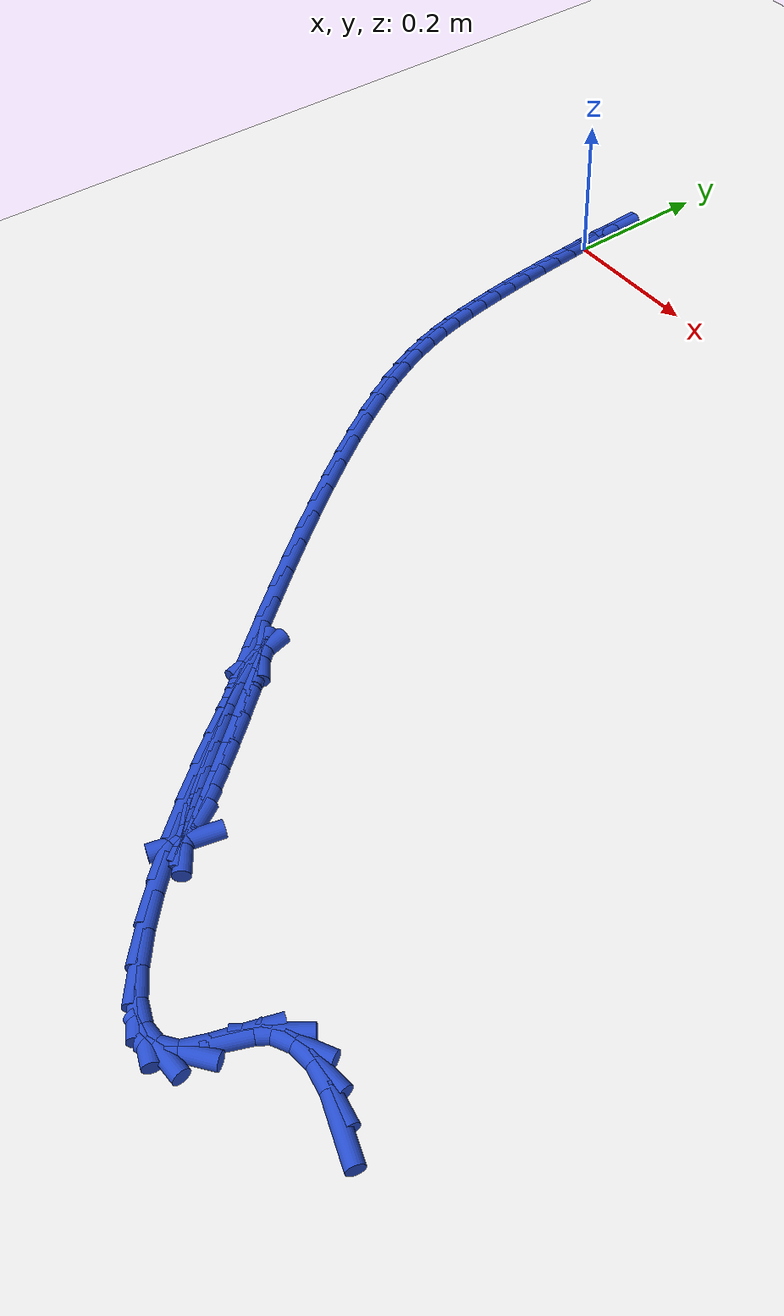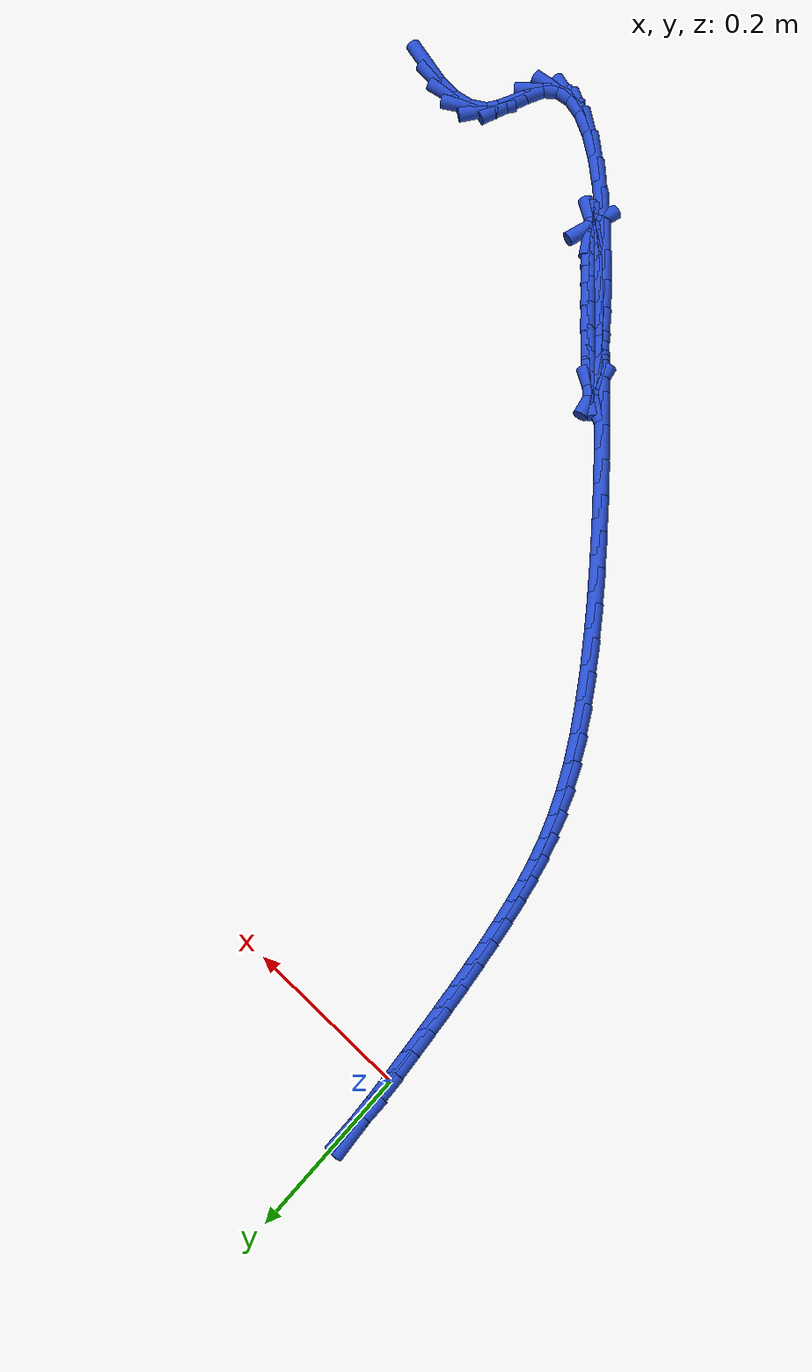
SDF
<sdf version="1.6">
 <world name="default">
  <model name="ground_plane">
   <static>1</static>
   <link name="link">
    <collision name="collision">
     <geometry><plane><normal>0 0 1</normal><size>100 100</size></plane></geometry>
     <surface><friction><ode><mu>100</mu><mu2>50</mu2></ode></friction></surface>
    </collision>
    <visual name="visual">
     <cast_shadows>0</cast_shadows>
     <geometry><plane><normal>0 0 1</normal><size>100 100</size></plane></geometry>
     <material>
      <script><uri>file://media/materials/scripts/gazebo.material</uri><name>Gazebo/WhiteGlow</name></script>
     </material>
    </visual>
   </link>
  </model>
  <model name="line">
   <link name="link_0">
    <pose>4.336808689942018e-18 -1.3877787807814457e-17 0.01 0 1.57 -1.5004727236645181</pose>
    <collision name="collision">
     <geometry><cylinder><radius>0.01</radius><length>0.08</length></cylinder></geometry>
    </collision>
    <visual name="visual">
     <material>
      <script><name>Gazebo/Blue</name><uri>file://media/materials/scripts/gazebo.material</uri></script>
     </material>
     <geometry><cylinder><radius>0.01</radius><length>0.08</length></cylinder></geometry>
    </visual>
   </link>
   <link name="link_1">
    <pose>-0.002090213842050008 0.02967377890762394 0.01 0 1.57 -1.5243912335666294</pose>
    <collision name="collision">
     <geometry><cylinder><radius>0.01</radius><length>0.08</length></cylinder></geometry>
    </collision>
    <visual name="visual">
     <material>
      <script><name>Gazebo/Blue</name><uri>file://media/materials/scripts/gazebo.material</uri></script>
     </material>
     <geometry><cylinder><radius>0.01</radius><length>0.08</length></cylinder></geometry>
    </visual>
   </link>
   <link name="link_2">
    <pose>-0.003456920320375669 0.059104283312430735 0.01 0 1.57 -1.5678988701776204</pose>
    <collision name="collision">
     <geometry><cylinder><radius>0.01</radius><length>0.08</length></cylinder></geometry>
    </collision>
    <visual name="visual">
     <material>
      <script><name>Gazebo/Blue</name><uri>file://media/materials/scripts/gazebo.material</uri></script>
     </material>
     <geometry><cylinder><radius>0.01</radius><length>0.08</length></cylinder></geometry>
    </visual>
   </link>
   <link name="link_223">
    <pose>0.88336242282214 -1.0167301693961937 0.01 0 1.57 -0.28909262031329624</pose>
    <collision name="collision">
     <geometry><cylinder><radius>0.01</radius><length>0.08</length></cylinder></geometry>
    </collision>
    <visual name="visual">
     <material>
      <script><name>Gazebo/Blue</name><uri>file://media/materials/scripts/gazebo.material</uri></script>
     </material>
     <geometry><cylinder><radius>0.01</radius><length>0.08</length></cylinder></geometry>
    </visual>
   </link>
   <link name="link_224">
    <pose>0.8502763146235434 -1.006889537907581 0.01 0 1.57 -0.12430135158910828</pose>
    <collision name="collision">
     <geometry><cylinder><radius>0.01</radius><length>0.08</length></cylinder></geometry>
    </collision>
    <visual name="visual">
     <material>
      <script><name>Gazebo/Blue</name><uri>file://media/materials/scripts/gazebo.material</uri></script>
     </material>
     <geometry><cylinder><radius>0.01</radius><length>0.08</length></cylinder></geometry>
    </visual>
   </link>
   <link name="link_225">
    <pose>0.820319551987146 -1.003146574645335 0.01 0 1.57 0.13447065313208886</pose>
    <collision name="collision">
     <geometry><cylinder><radius>0.01</radius><length>0.08</length></cylinder></geometry>
    </collision>
    <visual name="visual">
     <material>
      <script><name>Gazebo/Blue</name><uri>file://media/materials/scripts/gazebo.material</uri></script>
     </material>
     <geometry><cylinder><radius>0.01</radius><length>0.08</length></cylinder></geometry>
    </visual>
   </link>
   <link name="link_226">
    <pose>0.7943796750687295 -1.0066559046987276 0.01 0 1.57 0.5154108014670346</pose>
    <collision name="collision">
     <geometry><cylinder><radius>0.01</radius><length>0.08</length></cylinder></geometry>
    </collision>
    <visual name="visual">
     <material>
      <script><name>Gazebo/Blue</name><uri>file://media/materials/scripts/gazebo.material</uri></script>
     </material>
     <geometry><cylinder><radius>0.01</radius><length>0.08</length></cylinder></geometry>
    </visual>
   </link>
   <link name="link_227">
    <pose>0.7733442240240753 -1.018572153157031 0.01 0 1.57 0.9534509294882209</pose>
    <collision name="collision">
     <geometry><cylinder><radius>0.01</radius><length>0.08</length></cylinder></geometry>
    </collision>
    <visual name="visual">
     <material>
      <script><name>Gazebo/Blue</name><uri>file://media/materials/scripts/gazebo.material</uri></script>
     </material>
     <geometry><cylinder><radius>0.01</radius><length>0.08</length></cylinder></geometry>
    </visual>
   </link>
   <link name="link_228">
    <pose>0.7580990790209606 -1.0400469403450905 0.01 0 1.57 1.2297935694770326</pose>
    <collision name="collision">
     <geometry><cylinder><radius>0.01</radius><length>0.08</length></cylinder></geometry>
    </collision>
    <visual name="visual">
     <material>
      <script><name>Gazebo/Blue</name><uri>file://media/materials/scripts/gazebo.material</uri></script>
     </material>
     <geometry><cylinder><radius>0.01</radius><length>0.08</length></cylinder></geometry>
    </visual>
   </link>
   <link name="link_229">
    <pose>0.7477933558911967 -1.06908814839122 0.01 0 1.57 1.1565052617797604</pose>
    <collision name="collision">
     <geometry><cylinder><radius>0.01</radius><length>0.08</length></cylinder></geometry>
    </collision>
    <visual name="visual">
     <material>
      <script><name>Gazebo/Blue</name><uri>file://media/materials/scripts/gazebo.material</uri></script>
     </material>
     <geometry><cylinder><radius>0.01</radius><length>0.08</length></cylinder></geometry>
    </visual>
   </link>
   <link name="link_230">
    <pose>0.73656225318452 -1.0946283324500012 0.01 0 1.57 0.6767507473455415</pose>
    <collision name="collision">
     <geometry><cylinder><radius>0.01</radius><length>0.08</length></cylinder></geometry>
    </collision>
    <visual name="visual">
     <material>
      <script><name>Gazebo/Blue</name><uri>file://media/materials/scripts/gazebo.material</uri></script>
     </material>
     <geometry><cylinder><radius>0.01</radius><length>0.08</length></cylinder></geometry>
    </visual>
   </link>
   <link name="link_231">
    <pose>0.7198495119521386 -1.1080537007623268 0.01 0 1.57 0.07758808867870097</pose>
    <collision name="collision">
     <geometry><cylinder><radius>0.01</radius><length>0.08</length></cylinder></geometry>
    </collision>
    <visual name="visual">
     <material>
      <script><name>Gazebo/Blue</name><uri>file://media/materials/scripts/gazebo.material</uri></script>
     </material>
     <geometry><cylinder><radius>0.01</radius><length>0.08</length></cylinder></geometry>
    </visual>
   </link>
   <link name="link_232">
    <pose>0.6979698356938636 -1.1097547177186098 0.01 0 1.57 -0.3127020809621105</pose>
    <collision name="collision">
     <geometry><cylinder><radius>0.01</radius><length>0.08</length></cylinder></geometry>
    </collision>
    <visual name="visual">
     <material>
      <script><name>Gazebo/Blue</name><uri>file://media/materials/scripts/gazebo.material</uri></script>
     </material>
     <geometry><cylinder><radius>0.01</radius><length>0.08</length></cylinder></geometry>
    </visual>
   </link>
   <link name="link_233">
    <pose>0.6718871283839941 -1.101321932379666 0.01 0 1.57 -0.5248018946952373</pose>
    <collision name="collision">
     <geometry><cylinder><radius>0.01</radius><length>0.08</length></cylinder></geometry>
    </collision>
    <visual name="visual">
     <material>
      <script><name>Gazebo/Blue</name><uri>file://media/materials/scripts/gazebo.material</uri></script>
     </material>
     <geometry><cylinder><radius>0.01</radius><length>0.08</length></cylinder></geometry>
    </visual>
   </link>
   <link name="link_234">
    <pose>0.6425652939968264 -1.0843458938063086 0.01 0 1.57 -0.6481626168121188</pose>
    <collision name="collision">
     <geometry><cylinder><radius>0.01</radius><length>0.08</length></cylinder></geometry>
    </collision>
    <visual name="visual">
     <material>
      <script><name>Gazebo/Blue</name><uri>file://media/materials/scripts/gazebo.material</uri></script>
     </material>
     <geometry><cylinder><radius>0.01</radius><length>0.08</length></cylinder></geometry>
    </visual>
   </link>
   <link name="link_235">
    <pose>0.6109682365066598 -1.0604171510593539 0.01 0 1.57 -0.7273041051173625</pose>
    <collision name="collision">
     <geometry><cylinder><radius>0.01</radius><length>0.08</length></cylinder></geometry>
    </collision>
    <visual name="visual">
     <material>
      <script><name>Gazebo/Blue</name><uri>file://media/materials/scripts/gazebo.material</uri></script>
     </material>
     <geometry><cylinder><radius>0.01</radius><length>0.08</length></cylinder></geometry>
    </visual>
   </link>
   <link name="link_236">
    <pose>0.5780598598877921 -1.031126253199615 0.01 0 1.57 -0.7824836235669334</pose>
    <collision name="collision">
     <geometry><cylinder><radius>0.01</radius><length>0.08</length></cylinder></geometry>
    </collision>
    <visual name="visual">
     <material>
      <script><name>Gazebo/Blue</name><uri>file://media/materials/scripts/gazebo.material</uri></script>
     </material>
     <geometry><cylinder><radius>0.01</radius><length>0.08</length></cylinder></geometry>
    </visual>
   </link>
   <link name="link_237">
    <pose>0.5448040681145216 -0.998063749287908 0.01 0 1.57 -0.8237433551442273</pose>
    <collision name="collision">
     <geometry><cylinder><radius>0.01</radius><length>0.08</length></cylinder></geometry>
    </collision>
    <visual name="visual">
     <material>
      <script><name>Gazebo/Blue</name><uri>file://media/materials/scripts/gazebo.material</uri></script>
     </material>
     <geometry><cylinder><radius>0.01</radius><length>0.08</length></cylinder></geometry>
    </visual>
   </link>
   <link name="link_238">
    <pose>0.512164765161147 -0.9628201883850479 0.01 0 1.57 -0.8566623278981587</pose>
    <collision name="collision">
     <geometry><cylinder><radius>0.01</radius><length>0.08</length></cylinder></geometry>
    </collision>
    <visual name="visual">
     <material>
      <script><name>Gazebo/Blue</name><uri>file://media/materials/scripts/gazebo.material</uri></script>
     </material>
     <geometry><cylinder><radius>0.01</radius><length>0.08</length></cylinder></geometry>
    </visual>
   </link>
   <link name="link_239">
    <pose>0.4811058550019657 -0.9269861195518487 0.01 0 1.57 -0.8848253395469181</pose>
    <collision name="collision">
     <geometry><cylinder><radius>0.01</radius><length>0.08</length></cylinder></geometry>
    </collision>
    <visual name="visual">
     <material>
      <script><name>Gazebo/Blue</name><uri>file://media/materials/scripts/gazebo.material</uri></script>
     </material>
     <geometry><cylinder><radius>0.01</radius><length>0.08</length></cylinder></geometry>
    </visual>
   </link>
   <link name="link_240">
    <pose>0.4525912416112764 -0.8921520918491259 0.01 0 1.57 -0.9111424497759483</pose>
    <collision name="collision">
     <geometry><cylinder><radius>0.01</radius><length>0.08</length></cylinder></geometry>
    </collision>
    <visual name="visual">
     <material>
      <script><name>Gazebo/Blue</name><uri>file://media/materials/scripts/gazebo.material</uri></script>
     </material>
     <geometry><cylinder><radius>0.01</radius><length>0.08</length></cylinder></geometry>
    </visual>
   </link>
   <link name="link_241">
    <pose>0.4275848289633773 -0.8599086543376939 0.01 0 1.57 -0.9390843646306791</pose>
    <collision name="collision">
     <geometry><cylinder><radius>0.01</radius><length>0.08</length></cylinder></geometry>
    </collision>
    <visual name="visual">
     <material>
      <script><name>Gazebo/Blue</name><uri>file://media/materials/scripts/gazebo.material</uri></script>
     </material>
     <geometry><cylinder><radius>0.01</radius><length>0.08</length></cylinder></geometry>
    </visual>
   </link>
   <link name="link_242">
    <pose>0.40705052103256645 -0.831846356078368 0.01 0 1.57 -0.975441539034719</pose>
    <collision name="collision">
     <geometry><cylinder><radius>0.01</radius><length>0.08</length></cylinder></geometry>
    </collision>
    <visual name="visual">
     <material>
      <script><name>Gazebo/Blue</name><uri>file://media/materials/scripts/gazebo.material</uri></script>
     </material>
     <geometry><cylinder><radius>0.01</radius><length>0.08</length></cylinder></geometry>
    </visual>
   </link>
   <link name="link_243">
    <pose>0.391952221793142 -0.8095557461319624 0.01 0 1.57 -1.0432133565956563</pose>
    <collision name="collision">
     <geometry><cylinder><radius>0.01</radius><length>0.08</length></cylinder></geometry>
    </collision>
    <visual name="visual">
     <material>
      <script><name>Gazebo/Blue</name><uri>file://media/materials/scripts/gazebo.material</uri></script>
     </material>
     <geometry><cylinder><radius>0.01</radius><length>0.08</length></cylinder></geometry>
    </visual>
   </link>
   <link name="link_244">
    <pose>0.38325383521940226 -0.7946273735592925 0.01 0 1.57 -1.3510652422803937</pose>
    <collision name="collision">
     <geometry><cylinder><radius>0.01</radius><length>0.08</length></cylinder></geometry>
    </collision>
    <visual name="visual">
     <material>
      <script><name>Gazebo/Blue</name><uri>file://media/materials/scripts/gazebo.material</uri></script>
     </material>
     <geometry><cylinder><radius>0.01</radius><length>0.08</length></cylinder></geometry>
    </visual>
   </link>
   <link name="link_245">
    <pose>0.38191926528564535 -0.7886517874211727 0.01 0 1.57 -0.5714839393085597</pose>
    <collision name="collision">
     <geometry><cylinder><radius>0.01</radius><length>0.08</length></cylinder></geometry>
    </collision>
    <visual name="visual">
     <material>
      <script><name>Gazebo/Blue</name><uri>file://media/materials/scripts/gazebo.material</uri></script>
     </material>
     <geometry><cylinder><radius>0.01</radius><length>0.08</length></cylinder></geometry>
    </visual>
   </link>
   <link name="link_246">
    <pose>0.3888118695991816 -0.7930841741446142 0.01 0 1.57 -0.7768329143984447</pose>
    <collision name="collision">
     <geometry><cylinder><radius>0.01</radius><length>0.08</length></cylinder></geometry>
    </collision>
    <visual name="visual">
     <material>
      <script><name>Gazebo/Blue</name><uri>file://media/materials/scripts/gazebo.material</uri></script>
     </material>
     <geometry><cylinder><radius>0.01</radius><length>0.08</length></cylinder></geometry>
    </visual>
   </link>
   <link name="link_247">
    <pose>0.40318762704443134 -0.8072157531832914 0.01 0 1.57 -0.8232310598219492</pose>
    <collision name="collision">
     <geometry><cylinder><radius>0.01</radius><length>0.08</length></cylinder></geometry>
    </collision>
    <visual name="visual">
     <material>
      <script><name>Gazebo/Blue</name><uri>file://media/materials/scripts/gazebo.material</uri></script>
     </material>
     <geometry><cylinder><radius>0.01</radius><length>0.08</length></cylinder></geometry>
    </visual>
   </link>
   <link name="link_248">
    <pose>0.4230103146601824 -0.8285980904313215 0.01 0 1.57 -0.8448954556311575</pose>
    <collision name="collision">
     <geometry><cylinder><radius>0.01</radius><length>0.08</length></cylinder></geometry>
    </collision>
    <visual name="visual">
     <material>
      <script><name>Gazebo/Blue</name><uri>file://media/materials/scripts/gazebo.material</uri></script>
     </material>
     <geometry><cylinder><radius>0.01</radius><length>0.08</length></cylinder></geometry>
    </visual>
   </link>
   <link name="link_249">
    <pose>0.44620714128686745 -0.8547335210866638 0.01 0 1.57 -0.8588666735849276</pose>
    <collision name="collision">
     <geometry><cylinder><radius>0.01</radius><length>0.08</length></cylinder></geometry>
    </collision>
    <visual name="visual">
     <material>
      <script><name>Gazebo/Blue</name><uri>file://media/materials/scripts/gazebo.material</uri></script>
     </material>
     <geometry><cylinder><radius>0.01</radius><length>0.08</length></cylinder></geometry>
    </visual>
   </link>
   <link name="link_250">
    <pose>0.47070531576491687 -0.8831243803472759 0.01 0 1.57 -0.8704333138733406</pose>
    <collision name="collision">
     <geometry><cylinder><radius>0.01</radius><length>0.08</length></cylinder></geometry>
    </collision>
    <visual name="visual">
     <material>
      <script><name>Gazebo/Blue</name><uri>file://media/materials/scripts/gazebo.material</uri></script>
     </material>
     <geometry><cylinder><radius>0.01</radius><length>0.08</length></cylinder></geometry>
    </visual>
   </link>
   <link name="link_251">
    <pose>0.4944320469347616 -0.9112730034111161 0.01 0 1.57 -0.8828655345072315</pose>
    <collision name="collision">
     <geometry><cylinder><radius>0.01</radius><length>0.08</length></cylinder></geometry>
    </collision>
    <visual name="visual">
     <material>
      <script><name>Gazebo/Blue</name><uri>file://media/materials/scripts/gazebo.material</uri></script>
     </material>
     <geometry><cylinder><radius>0.01</radius><length>0.08</length></cylinder></geometry>
    </visual>
   </link>
   <link name="link_252">
    <pose>0.5153145436368328 -0.9366817254761418 0.01 0 1.57 -0.901183103963383</pose>
    <collision name="collision">
     <geometry><cylinder><radius>0.01</radius><length>0.08</length></cylinder></geometry>
    </collision>
    <visual name="visual">
     <material>
      <script><name>Gazebo/Blue</name><uri>file://media/materials/scripts/gazebo.material</uri></script>
     </material>
     <geometry><cylinder><radius>0.01</radius><length>0.08</length></cylinder></geometry>
    </visual>
   </link>
   <link name="link_253">
    <pose>0.5313116142737828 -0.9568896196292366 0.01 0 1.57 -0.9367583040678491</pose>
    <collision name="collision">
     <geometry><cylinder><radius>0.01</radius><length>0.08</length></cylinder></geometry>
    </collision>
    <visual name="visual">
     <material>
      <script><name>Gazebo/Blue</name><uri>file://media/materials/scripts/gazebo.material</uri></script>
     </material>
     <geometry><cylinder><radius>0.01</radius><length>0.08</length></cylinder></geometry>
    </visual>
   </link>
   <link name="link_254">
    <pose>0.5414498150417512 -0.9706771305801681 0.01 0 1.57 -1.0293498994979644</pose>
    <collision name="collision">
     <geometry><cylinder><radius>0.01</radius><length>0.08</length></cylinder></geometry>
    </collision>
    <visual name="visual">
     <material>
      <script><name>Gazebo/Blue</name><uri>file://media/materials/scripts/gazebo.material</uri></script>
     </material>
     <geometry><cylinder><radius>0.01</radius><length>0.08</length></cylinder></geometry>
    </visual>
   </link>
   <link name="link_255">
    <pose>0.5460563454524446 -0.9783368407488324 0.01 0 1.57 1.306179661415784</pose>
    <collision name="collision">
     <geometry><cylinder><radius>0.01</radius><length>0.08</length></cylinder></geometry>
    </collision>
    <visual name="visual">
     <material>
      <script><name>Gazebo/Blue</name><uri>file://media/materials/scripts/gazebo.material</uri></script>
     </material>
     <geometry><cylinder><radius>0.01</radius><length>0.08</length></cylinder></geometry>
    </visual>
   </link>
   <link name="link_256">
    <pose>0.5455371528611433 -0.980252885390892 0.01 0 1.57 -0.5814781695562694</pose>
    <collision name="collision">
     <geometry><cylinder><radius>0.01</radius><length>0.08</length></cylinder></geometry>
    </collision>
    <visual name="visual">
     <material>
      <script><name>Gazebo/Blue</name><uri>file://media/materials/scripts/gazebo.material</uri></script>
     </material>
     <geometry><cylinder><radius>0.01</radius><length>0.08</length></cylinder></geometry>
    </visual>
   </link>
   <link name="link_257">
    <pose>0.5402981846231277 -0.9768093997620083 0.01 0 1.57 -0.7223870833226899</pose>
    <collision name="collision">
     <geometry><cylinder><radius>0.01</radius><length>0.08</length></cylinder></geometry>
    </collision>
    <visual name="visual">
     <material>
      <script><name>Gazebo/Blue</name><uri>file://media/materials/scripts/gazebo.material</uri></script>
     </material>
     <geometry><cylinder><radius>0.01</radius><length>0.08</length></cylinder></geometry>
    </visual>
   </link>
   <link name="link_258">
    <pose>0.5307453880936778 -0.9683905191178428 0.01 0 1.57 -0.7683796652550795</pose>
    <collision name="collision">
     <geometry><cylinder><radius>0.01</radius><length>0.08</length></cylinder></geometry>
    </collision>
    <visual name="visual">
     <material>
      <script><name>Gazebo/Blue</name><uri>file://media/materials/scripts/gazebo.material</uri></script>
     </material>
     <geometry><cylinder><radius>0.01</radius><length>0.08</length></cylinder></geometry>
    </visual>
   </link>
   <link name="link_259">
    <pose>0.5172847106280738 -0.9553803787140573 0.01 0 1.57 -0.7928484288678409</pose>
    <collision name="collision">
     <geometry><cylinder><radius>0.01</radius><length>0.08</length></cylinder></geometry>
    </collision>
    <visual name="visual">
     <material>
      <script><name>Gazebo/Blue</name><uri>file://media/materials/scripts/gazebo.material</uri></script>
     </material>
     <geometry><cylinder><radius>0.01</radius><length>0.08</length></cylinder></geometry>
    </visual>
   </link>
   <link name="link_260">
    <pose>0.500322099581596 -0.9381631138063137 0.01 0 1.57 -0.8092788859340966</pose>
    <collision name="collision">
     <geometry><cylinder><radius>0.01</radius><length>0.08</length></cylinder></geometry>
    </collision>
    <visual name="visual">
     <material>
      <script><name>Gazebo/Blue</name><uri>file://media/materials/scripts/gazebo.material</uri></script>
     </material>
     <geometry><cylinder><radius>0.01</radius><length>0.08</length></cylinder></geometry>
    </visual>
   </link>
   <link name="link_261">
    <pose>0.4802635023095245 -0.917122859650273 0.01 0 1.57 -0.8220227837935008</pose>
    <collision name="collision">
     <geometry><cylinder><radius>0.01</radius><length>0.08</length></cylinder></geometry>
    </collision>
    <visual name="visual">
     <material>
      <script><name>Gazebo/Blue</name><uri>file://media/materials/scripts/gazebo.material</uri></script>
     </material>
     <geometry><cylinder><radius>0.01</radius><length>0.08</length></cylinder></geometry>
    </visual>
   </link>
   <link name="link_262">
    <pose>0.4575148661671397 -0.8926437515015976 0.01 0 1.57 -0.8329419763639424</pose>
    <collision name="collision">
     <geometry><cylinder><radius>0.01</radius><length>0.08</length></cylinder></geometry>
    </collision>
    <visual name="visual">
     <material>
      <script><name>Gazebo/Blue</name><uri>file://media/materials/scripts/gazebo.material</uri></script>
     </material>
     <geometry><cylinder><radius>0.01</radius><length>0.08</length></cylinder></geometry>
    </visual>
   </link>
   <link name="link_263">
    <pose>0.43248213850972167 -0.8651099246159489 0.01 0 1.57 -0.842999125979453</pose>
    <collision name="collision">
     <geometry><cylinder><radius>0.01</radius><length>0.08</length></cylinder></geometry>
    </collision>
    <visual name="visual">
     <material>
      <script><name>Gazebo/Blue</name><uri>file://media/materials/scripts/gazebo.material</uri></script>
     </material>
     <geometry><cylinder><radius>0.01</radius><length>0.08</length></cylinder></geometry>
    </visual>
   </link>
   <link name="link_264">
    <pose>0.40557126669255056 -0.8349055142489885 0.01 0 1.57 -0.852776301729174</pose>
    <collision name="collision">
     <geometry><cylinder><radius>0.01</radius><length>0.08</length></cylinder></geometry>
    </collision>
    <visual name="visual">
     <material>
      <script><name>Gazebo/Blue</name><uri>file://media/materials/scripts/gazebo.material</uri></script>
     </material>
     <geometry><cylinder><radius>0.01</radius><length>0.08</length></cylinder></geometry>
    </visual>
   </link>
   <link name="link_265">
    <pose>0.3771881980709075 -0.8024146556563789 0.01 0 1.57 -0.8626822209850162</pose>
    <collision name="collision">
     <geometry><cylinder><radius>0.01</radius><length>0.08</length></cylinder></geometry>
    </collision>
    <visual name="visual">
     <material>
      <script><name>Gazebo/Blue</name><uri>file://media/materials/scripts/gazebo.material</uri></script>
     </material>
     <geometry><cylinder><radius>0.01</radius><length>0.08</length></cylinder></geometry>
    </visual>
   </link>
   <link name="link_266">
    <pose>0.3477388800000708 -0.7680214840937802 0.01 0 1.57 -0.873050065449156</pose>
    <collision name="collision">
     <geometry><cylinder><radius>0.01</radius><length>0.08</length></cylinder></geometry>
    </collision>
    <visual name="visual">
     <material>
      <script><name>Gazebo/Blue</name><uri>file://media/materials/scripts/gazebo.material</uri></script>
     </material>
     <geometry><cylinder><radius>0.01</radius><length>0.08</length></cylinder></geometry>
    </visual>
   </link>
   <link name="link_267">
    <pose>0.3176292598353217 -0.7321101348168547 0.01 0 1.57 -0.8841925210151731</pose>
    <collision name="collision">
     <geometry><cylinder><radius>0.01</radius><length>0.08</length></cylinder></geometry>
    </collision>
    <visual name="visual">
     <material>
      <script><name>Gazebo/Blue</name><uri>file://media/materials/scripts/gazebo.material</uri></script>
     </material>
     <geometry><cylinder><radius>0.01</radius><length>0.08</length></cylinder></geometry>
    </visual>
   </link>
   <link name="link_268">
    <pose>0.2872652849319403 -0.6950647430812641 0.01 0 1.57 -0.8964403887531653</pose>
    <collision name="collision">
     <geometry><cylinder><radius>0.01</radius><length>0.08</length></cylinder></geometry>
    </collision>
    <visual name="visual">
     <material>
      <script><name>Gazebo/Blue</name><uri>file://media/materials/scripts/gazebo.material</uri></script>
     </material>
     <geometry><cylinder><radius>0.01</radius><length>0.08</length></cylinder></geometry>
    </visual>
   </link>
   <link name="link_269">
    <pose>0.25705290264520686 -0.65726944414267 0.01 0 1.57 -0.9101776608823114</pose>
    <collision name="collision">
     <geometry><cylinder><radius>0.01</radius><length>0.08</length></cylinder></geometry>
    </collision>
    <visual name="visual">
     <material>
      <script><name>Gazebo/Blue</name><uri>file://media/materials/scripts/gazebo.material</uri></script>
     </material>
     <geometry><cylinder><radius>0.01</radius><length>0.08</length></cylinder></geometry>
    </visual>
   </link>
   <link name="link_270">
    <pose>0.2273980603304015 -0.6191083732567343 0.01 0 1.57 -0.925881833514367</pose>
    <collision name="collision">
     <geometry><cylinder><radius>0.01</radius><length>0.08</length></cylinder></geometry>
    </collision>
    <visual name="visual">
     <material>
      <script><name>Gazebo/Blue</name><uri>file://media/materials/scripts/gazebo.material</uri></script>
     </material>
     <geometry><cylinder><radius>0.01</radius><length>0.08</length></cylinder></geometry>
    </visual>
   </link>
   <link name="link_271">
    <pose>0.19870670534280452 -0.5809656656791186 0.01 0 1.57 -0.9441785287704486</pose>
    <collision name="collision">
     <geometry><cylinder><radius>0.01</radius><length>0.08</length></cylinder></geometry>
    </collision>
    <visual name="visual">
     <material>
      <script><name>Gazebo/Blue</name><uri>file://media/materials/scripts/gazebo.material</uri></script>
     </material>
     <geometry><cylinder><radius>0.01</radius><length>0.08</length></cylinder></geometry>
    </visual>
   </link>
   <link name="link_272">
    <pose>0.17138478503769594 -0.5432254566654843 0.01 0 1.57 -0.9659234482183334</pose>
    <collision name="collision">
     <geometry><cylinder><radius>0.01</radius><length>0.08</length></cylinder></geometry>
    </collision>
    <visual name="visual">
     <material>
      <script><name>Gazebo/Blue</name><uri>file://media/materials/scripts/gazebo.material</uri></script>
     </material>
     <geometry><cylinder><radius>0.01</radius><length>0.08</length></cylinder></geometry>
    </visual>
   </link>
   <link name="link_273">
    <pose>0.14583824677035617 -0.5062718814714933 0.01 0 1.57 -0.9923339109485668</pose>
    <collision name="collision">
     <geometry><cylinder><radius>0.01</radius><length>0.08</length></cylinder></geometry>
    </collision>
    <visual name="visual">
     <material>
      <script><name>Gazebo/Blue</name><uri>file://media/materials/scripts/gazebo.material</uri></script>
     </material>
     <geometry><cylinder><radius>0.01</radius><length>0.08</length></cylinder></geometry>
    </visual>
   </link>
   <link name="link_274">
    <pose>0.12247303789606528 -0.47048907535280715 0.01 0 1.57 -1.025211591294644</pose>
    <collision name="collision">
     <geometry><cylinder><radius>0.01</radius><length>0.08</length></cylinder></geometry>
    </collision>
    <visual name="visual">
     <material>
      <script><name>Gazebo/Blue</name><uri>file://media/materials/scripts/gazebo.material</uri></script>
     </material>
     <geometry><cylinder><radius>0.01</radius><length>0.08</length></cylinder></geometry>
    </visual>
   </link>
   <link name="link_275">
    <pose>0.1016951057701035 -0.43626117356508765 0.01 0 1.57 -1.0671696255452507</pose>
    <collision name="collision">
     <geometry><cylinder><radius>0.01</radius><length>0.08</length></cylinder></geometry>
    </collision>
    <visual name="visual">
     <material>
      <script><name>Gazebo/Blue</name><uri>file://media/materials/scripts/gazebo.material</uri></script>
     </material>
     <geometry><cylinder><radius>0.01</radius><length>0.08</length></cylinder></geometry>
    </visual>
   </link>
   <link name="link_276">
    <pose>0.0838939700927973 -0.40395543978115384 0.01 0 1.57 -1.117478321314873</pose>
    <collision name="collision">
     <geometry><cylinder><radius>0.01</radius><length>0.08</length></cylinder></geometry>
    </collision>
    <visual name="visual">
     <material>
      <script><name>Gazebo/Blue</name><uri>file://media/materials/scripts/gazebo.material</uri></script>
     </material>
     <geometry><cylinder><radius>0.01</radius><length>0.08</length></cylinder></geometry>
    </visual>
   </link>
   <link name="link_277">
    <pose>0.0690834339559128 -0.3735532679982973 0.01 0 1.57 -1.1719370149402037</pose>
    <collision name="collision">
     <geometry><cylinder><radius>0.01</radius><length>0.08</length></cylinder></geometry>
    </collision>
    <visual name="visual">
     <material>
      <script><name>Gazebo/Blue</name><uri>file://media/materials/scripts/gazebo.material</uri></script>
     </material>
     <geometry><cylinder><radius>0.01</radius><length>0.08</length></cylinder></geometry>
    </visual>
   </link>
   <link name="link_278">
    <pose>0.05690275755929014 -0.3446513879725024 0.01 0 1.57 -1.2280432658281506</pose>
    <collision name="collision">
     <geometry><cylinder><radius>0.01</radius><length>0.08</length></cylinder></geometry>
    </collision>
    <visual name="visual">
     <material>
      <script><name>Gazebo/Blue</name><uri>file://media/materials/scripts/gazebo.material</uri></script>
     </material>
     <geometry><cylinder><radius>0.01</radius><length>0.08</length></cylinder></geometry>
    </visual>
   </link>
   <link name="link_279">
    <pose>0.04697500819186289 -0.31682989896449437 0.01 0 1.57 -1.2826037503363854</pose>
    <collision name="collision">
     <geometry><cylinder><radius>0.01</radius><length>0.08</length></cylinder></geometry>
    </collision>
    <visual name="visual">
     <material>
      <script><name>Gazebo/Blue</name><uri>file://media/materials/scripts/gazebo.material</uri></script>
     </material>
     <geometry><cylinder><radius>0.01</radius><length>0.08</length></cylinder></geometry>
    </visual>
   </link>
   <link name="link_280">
    <pose>0.03892325314256491 -0.2896689002349993 0.01 0 1.57 -1.3320296867256791</pose>
    <collision name="collision">
     <geometry><cylinder><radius>0.01</radius><length>0.08</length></cylinder></geometry>
    </collision>
    <visual name="visual">
     <material>
      <script><name>Gazebo/Blue</name><uri>file://media/materials/scripts/gazebo.material</uri></script>
     </material>
     <geometry><cylinder><radius>0.01</radius><length>0.08</length></cylinder></geometry>
    </visual>
   </link>
   <link name="link_281">
    <pose>0.032370559700329274 -0.2627484910447408 0.01 0 1.57 -1.3730239653239769</pose>
    <collision name="collision">
     <geometry><cylinder><radius>0.01</radius><length>0.08</length></cylinder></geometry>
    </collision>
    <visual name="visual">
     <material>
      <script><name>Gazebo/Blue</name><uri>file://media/materials/scripts/gazebo.material</uri></script>
     </material>
     <geometry><cylinder><radius>0.01</radius><length>0.08</length></cylinder></geometry>
    </visual>
   </link>
   <link name="link_282">
    <pose>0.02693999515408989 -0.23564877065444506 0.01 0 1.57 -1.4032507251971231</pose>
    <collision name="collision">
     <geometry><cylinder><radius>0.01</radius><length>0.08</length></cylinder></geometry>
    </collision>
    <visual name="visual">
     <material>
      <script><name>Gazebo/Blue</name><uri>file://media/materials/scripts/gazebo.material</uri></script>
     </material>
     <geometry><cylinder><radius>0.01</radius><length>0.08</length></cylinder></geometry>
    </visual>
   </link>
   <link name="link_283">
    <pose>0.022255507862525847 -0.20795140693571781 0.01 0 1.57 -1.4243146536696119</pose>
    <collision name="collision">
     <geometry><cylinder><radius>0.01</radius><length>0.08</length></cylinder></geometry>
    </collision>
    <visual name="visual">
     <material>
      <script><name>Gazebo/Blue</name><uri>file://media/materials/scripts/gazebo.material</uri></script>
     </material>
     <geometry><cylinder><radius>0.01</radius><length>0.08</length></cylinder></geometry>
    </visual>
   </link>
   <link name="link_284">
    <pose>0.01804702430600696 -0.1794267457117472 0.01 0 1.57 -1.4415544446783894</pose>
    <collision name="collision">
     <geometry><cylinder><radius>0.01</radius><length>0.08</length></cylinder></geometry>
    </collision>
    <visual name="visual">
     <material>
      <script><name>Gazebo/Blue</name><uri>file://media/materials/scripts/gazebo.material</uri></script>
     </material>
     <geometry><cylinder><radius>0.01</radius><length>0.08</length></cylinder></geometry>
    </visual>
   </link>
   <link name="link_285">
    <pose>0.014249957558352313 -0.15021097047967782 0.01 0 1.57 -1.4560381070804396</pose>
    <collision name="collision">
     <geometry><cylinder><radius>0.01</radius><length>0.08</length></cylinder></geometry>
    </collision>
    <visual name="visual">
     <material>
      <script><name>Gazebo/Blue</name><uri>file://media/materials/scripts/gazebo.material</uri></script>
     </material>
     <geometry><cylinder><radius>0.01</radius><length>0.08</length></cylinder></geometry>
    </visual>
   </link>
   <link name="link_286">
    <pose>0.010823282592332105 -0.12048221311957107 0.01 0 1.57 -1.468133364698595</pose>
    <collision name="collision">
     <geometry><cylinder><radius>0.01</radius><length>0.08</length></cylinder></geometry>
    </collision>
    <visual name="visual">
     <material>
      <script><name>Gazebo/Blue</name><uri>file://media/materials/scripts/gazebo.material</uri></script>
     </material>
     <geometry><cylinder><radius>0.01</radius><length>0.08</length></cylinder></geometry>
    </visual>
   </link>
   <link name="link_287">
    <pose>0.007725974380716556 -0.09041860551148842 0.01 0 1.57 -1.4781130548641266</pose>
    <collision name="collision">
     <geometry><cylinder><radius>0.01</radius><length>0.08</length></cylinder></geometry>
    </collision>
    <visual name="visual">
     <material>
      <script><name>Gazebo/Blue</name><uri>file://media/materials/scripts/gazebo.material</uri></script>
     </material>
     <geometry><cylinder><radius>0.01</radius><length>0.08</length></cylinder></geometry>
    </visual>
   </link>
   <link name="link_288">
    <pose>0.004917007896275878 -0.06019827953549139 0.01 0 1.57 -1.4861730107032878</pose>
    <collision name="collision">
     <geometry><cylinder><radius>0.01</radius><length>0.08</length></cylinder></geometry>
    </collision>
    <visual name="visual">
     <material>
      <script><name>Gazebo/Blue</name><uri>file://media/materials/scripts/gazebo.material</uri></script>
     </material>
     <geometry><cylinder><radius>0.01</radius><length>0.08</length></cylinder></geometry>
    </visual>
   </link>
   <link name="link_289">
    <pose>0.002355358111780283 -0.029999367071641348 0.01 0 1.57 -1.492443468526228</pose>
    <collision name="collision">
     <geometry><cylinder><radius>0.01</radius><length>0.08</length></cylinder></geometry>
    </collision>
    <visual name="visual">
     <material>
      <script><name>Gazebo/Blue</name><uri>file://media/materials/scripts/gazebo.material</uri></script>
     </material>
     <geometry><cylinder><radius>0.01</radius><length>0.08</length></cylinder></geometry>
    </visual>
   </link>
   <link name="link_290">
    <pose>-1.431146867680866e-17 2.0816681711721685e-16 0.01 0 1.57 -1.4969952084653388</pose>
    <collision name="collision">
     <geometry><cylinder><radius>0.01</radius><length>0.08</length></cylinder></geometry>
    </collision>
    <visual name="visual">
     <material>
      <script><name>Gazebo/Blue</name><uri>file://media/materials/scripts/gazebo.material</uri></script>
     </material>
     <geometry><cylinder><radius>0.01</radius><length>0.08</length></cylinder></geometry>
    </visual>
   </link>
   <link name="link_291">
    <pose>-0.002190091466294734 0.02962168979937092 0.01 0 1.57 -1.4998409082935114</pose>
    <collision name="collision">
     <geometry><cylinder><radius>0.01</radius><length>0.08</length></cylinder></geometry>
    </collision>
    <visual name="visual">
     <material>
      <script><name>Gazebo/Blue</name><uri>file://media/materials/scripts/gazebo.material</uri></script>
     </material>
     <geometry><cylinder><radius>0.01</radius><length>0.08</length></cylinder></geometry>
    </visual>
   </link>
   <link name="link_292">
    <pose>-0.004255941314333864 0.05868757044641211 0.01 0 1.57 -1.498404436290507</pose>
    <collision name="collision">
     <geometry><cylinder><radius>0.01</radius><length>0.08</length></cylinder></geometry>
    </collision>
    <visual name="visual">
     <material>
      <script><name>Gazebo/Blue</name><uri>file://media/materials/scripts/gazebo.material</uri></script>
     </material>
     <geometry><cylinder><radius>0.01</radius><length>0.08</length></cylinder></geometry>
    </visual>
   </link>
  </model>
 </world>
</sdf>
